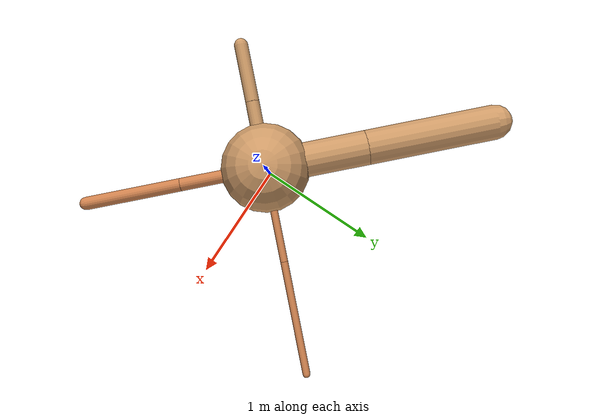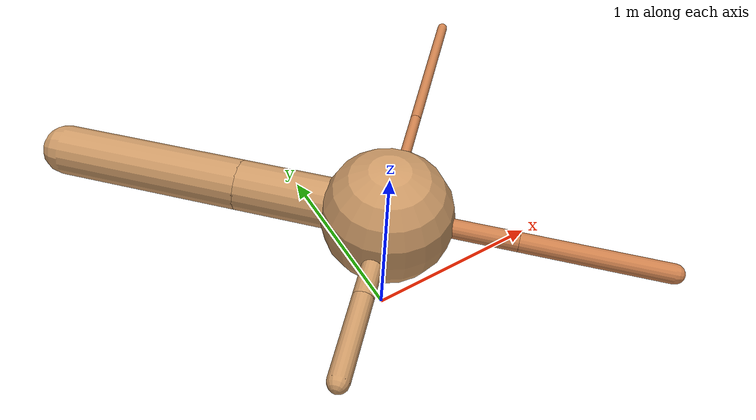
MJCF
<?xml version="1.0" ?>
<mujoco model="ant">

	<compiler angle="degree" coordinate="local" inertiafromgeom="true"/>

	<option integrator="RK4" timestep="0.01"/>

	<custom>

		<numeric data="0.0 0.0 0.55 1.0 0.0 0.0 0.0 0.0 1.0 0.0 -1.0 0.0 -1.0 0.0 1.0" name="init_qpos"/>

	</custom>

	<default>

		<joint armature="1" damping="1" limited="true"/>

		<geom conaffinity="0" condim="3" density="5.0" friction="1.5 0.1 0.1" margin="0.01" rgba="0.8 0.6 0.4 1"/>

	</default>

	<worldbody>

		<body name="torso" pos="0 0 0.75">

			<geom name="torso_geom" pos="0 0 0" size="0.33001905772730034" type="sphere"/>

			<!--joint armature="0" damping="0" limited="false" margin="0.01" name="root" pos="0 0 0" type="free"/-->

			<body name="front_left_leg" pos="0 0 0">

				<geom fromto="0 0 0 0.2 0.2 0" name="aux_1_geom" size="0.028188968356499464" type="capsule" rgba=".8 .5 .3 1"/>

				<body name="aux_1" pos="0.2 0.2 0">

					<joint axis="0 0 1" name="hip_1" pos="0.0 0.0 0.0" range="-40 40" type="hinge"/>

					<geom fromto="0 0 0 0.29771992453106444 0.29771992453106444 0" name="left_leg_geom" size="0.028188968356499464" type="capsule" rgba=".8 .5 .3 1"/>

					<body pos="0.29771992453106444 0.29771992453106444 0" name="front_left_foot">

						<joint axis="-1 1 0" name="ankle_1" pos="0.0 0.0 0.0" range="30 100" type="hinge"/>

						<geom fromto="0 0 0 0.5954398490621289 0.5954398490621289 0" name="left_ankle_geom" size="0.028188968356499464" type="capsule" rgba=".8 .5 .3 1"/>

					</body>

				</body>

			</body>

			<body name="front_right_leg" pos="0 0 0">

				<geom fromto="0 0 0 -0.2 0.2 0" name="aux_2_geom" size="0.12900610557585818" type="capsule"/>

				<body name="aux_2" pos="-0.2 0.2 0">

					<joint axis="0 0 1" name="hip_2" pos="0.0 0.0 0.0" range="-40 40" type="hinge"/>

					<geom fromto="0 0 0 -0.33707752833574056 0.33707752833574056 0" name="right_leg_geom" size="0.12900610557585818" type="capsule"/>

					<body pos="-0.33707752833574056 0.33707752833574056 0" name="front_right_foot">

						<joint axis="1 1 0" name="ankle_2" pos="0.0 0.0 0.0" range="-100 -30" type="hinge"/>

						<geom fromto="0 0 0 -0.6741550566714811 0.6741550566714811 0" name="right_ankle_geom" size="0.12900610557585818" type="capsule"/>

					</body>

				</body>

			</body>

			<body name="left_back_leg" pos="0 0 0">

				<geom fromto="0 0 0 -0.2 -0.2 0" name="aux_3_geom" size="0.05118039727322286" type="capsule"/>

				<body name="aux_3" pos="-0.2 -0.2 0">

					<joint axis="0 0 1" name="hip_3" pos="0.0 0.0 0.0" range="-40 40" type="hinge"/>

					<geom fromto="0 0 0 -0.14972621496862007 -0.14972621496862007 0" name="back_leg_geom" size="0.05118039727322286" type="capsule"/>

					<body pos="-0.14972621496862007 -0.14972621496862007 0" name="left_back_foot">

						<joint axis="-1 1 0" name="ankle_3" pos="0.0 0.0 0.0" range="-100 -30" type="hinge"/>

						<geom fromto="0 0 0 -0.29945242993724014 -0.29945242993724014 0" name="third_ankle_geom" size="0.05118039727322286" type="capsule"/>

					</body>

				</body>

			</body>

			<body name="right_back_leg" pos="0 0 0">

				<geom fromto="0 0 0 0.2 -0.2 0" name="aux_4_geom" size="0.04821271098280236" type="capsule" rgba=".8 .5 .3 1"/>

				<body name="aux_4" pos="0.2 -0.2 0">

					<joint axis="0 0 1" name="hip_4" pos="0.0 0.0 0.0" range="-40 40" type="hinge"/>

					<geom fromto="0 0 0 0.24969636487881017 -0.24969636487881017 0" name="rightback_leg_geom" size="0.04821271098280236" type="capsule" rgba=".8 .5 .3 1"/>

					<body pos="0.24969636487881017 -0.24969636487881017 0" name="right_back_foot">

						<joint axis="1 1 0" name="ankle_4" pos="0.0 0.0 0.0" range="30 100" type="hinge"/>

						<geom fromto="0 0 0 0.49939272975762034 -0.49939272975762034 0" name="fourth_ankle_geom" size="0.04821271098280236" type="capsule" rgba=".8 .5 .3 1"/>

					</body>

				</body>

			</body>

		</body>

	</worldbody>

	<actuator>

		<motor ctrllimited="true" ctrlrange="-1.0 1.0" joint="hip_4" gear="150"/>

		<motor ctrllimited="true" ctrlrange="-1.0 1.0" joint="ankle_4" gear="150"/>

		<motor ctrllimited="true" ctrlrange="-1.0 1.0" joint="hip_1" gear="150"/>

		<motor ctrllimited="true" ctrlrange="-1.0 1.0" joint="ankle_1" gear="150"/>

		<motor ctrllimited="true" ctrlrange="-1.0 1.0" joint="hip_2" gear="150"/>

		<motor ctrllimited="true" ctrlrange="-1.0 1.0" joint="ankle_2" gear="150"/>

		<motor ctrllimited="true" ctrlrange="-1.0 1.0" joint="hip_3" gear="150"/>

		<motor ctrllimited="true" ctrlrange="-1.0 1.0" joint="ankle_3" gear="150"/>

	</actuator>

</mujoco>
